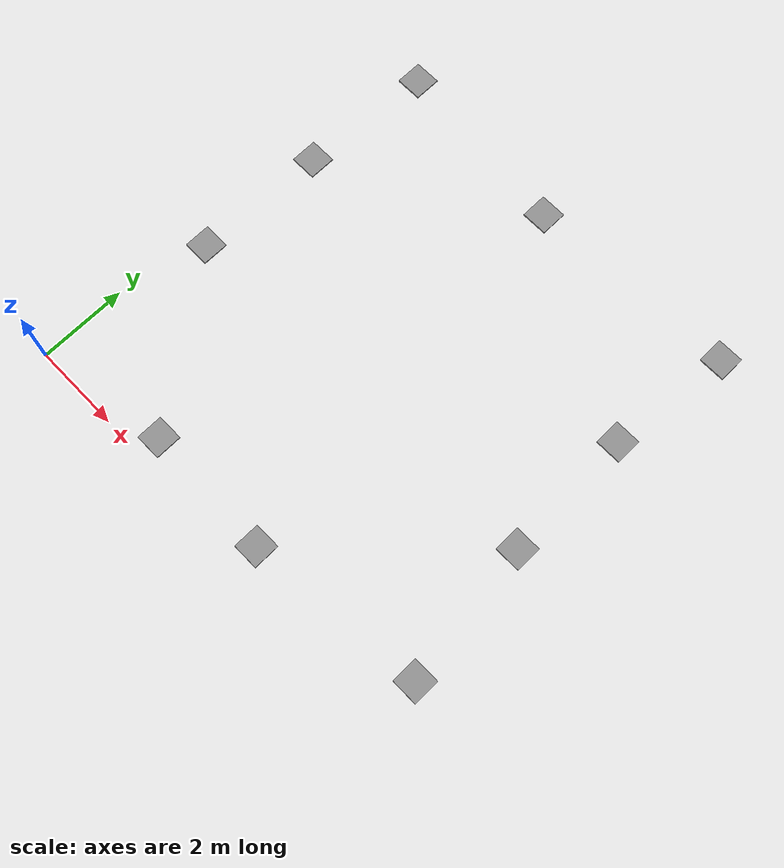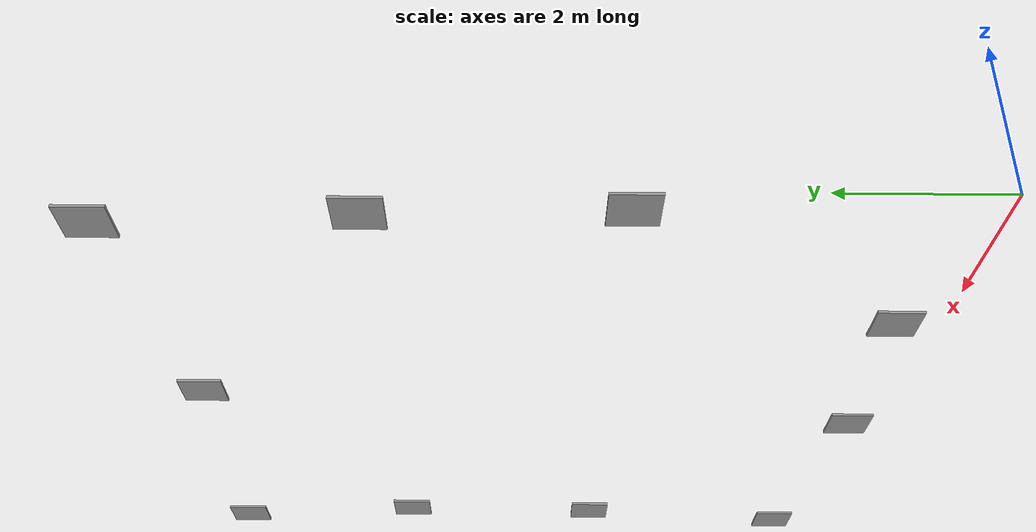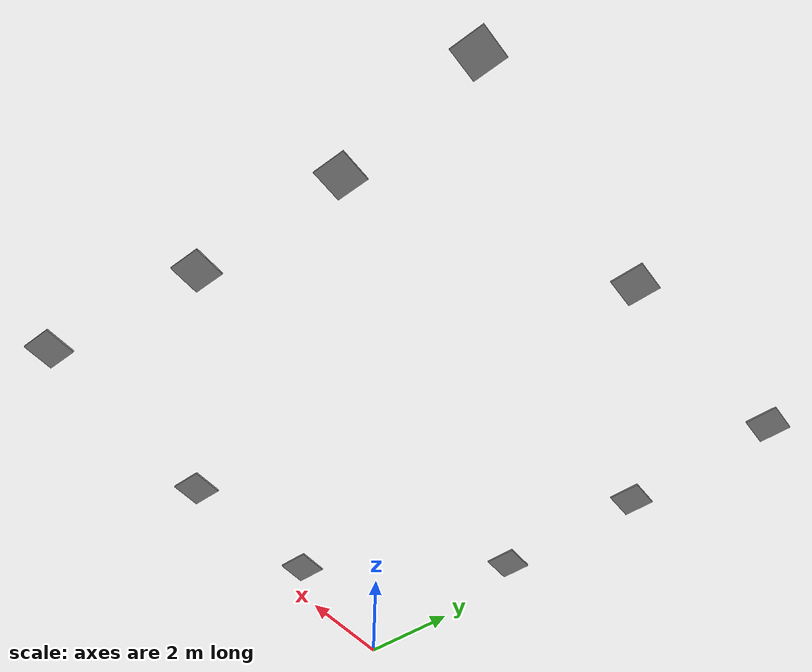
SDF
<?xml version="1.0" ?>
<sdf version="1.5">
  <model name="obstacles">

    <include>
      <name>o1</name>
      <pose>10 0.8 0.12 0 0 0</pose>
      <uri>model://obstacle</uri>
    </include>
    <include>
      <name>o2</name>
      <pose>0.8 10 0.12 0 0 0</pose>
      <uri>model://obstacle</uri>
    </include>
    <include>
      <name>o3</name>
      <pose>9.8 9.8 0.12 0 0 0</pose>
      <uri>model://obstacle</uri>
    </include>
    <include>
      <name>o4</name>
      <pose>6 0.4 0.12 0 0 0</pose>
      <uri>model://obstacle</uri>
    </include>
    <include>
      <name>o5</name>
      <pose>9.6 4 0.12 0 0 0</pose>
      <uri>model://obstacle</uri>
    </include>
    <include>
      <name>o6</name>
      <pose>5 9.6 0.12 0 0 0</pose>
      <uri>model://obstacle</uri>
    </include>
    <include>
      <name>o7</name>
      <pose>0.5 4 0.12 0 0 0</pose>
      <uri>model://obstacle</uri>
    </include>
    <include>
      <name>o8</name>
      <pose>9.5 7 0.12 0 0 0</pose>
      <uri>model://obstacle</uri>
    </include>
    <include>
      <name>o9</name>
      <pose>3 0.5 0.12 0 0 0</pose>
      <uri>model://obstacle</uri>
    </include>
    <include>
      <name>o10</name>
      <pose>0.6 7 0.12 0 0 0</pose>
      <uri>model://obstacle</uri>
    </include>

  </model>
</sdf>

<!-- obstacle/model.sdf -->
<sdf version="1.5">
  <model name="obstacle">
    <static>true</static>
    <link name="link">
      <inertial>
        <mass>1.5</mass>
          <inertia>
            <ixx>0.2</ixx>
            <ixy>0</ixy>
            <ixz>0</ixz>
            <iyy>0.2</iyy>
            <iyz>0</iyz>
            <izz>0.2</izz>
          </inertia>
      </inertial>
      <collision name="c1">
        <geometry>
          <box>
            <size>0.6 0.6 0.035</size>
          </box>
        </geometry>
      </collision>
      <visual name="v1">
        <geometry>
          <box>
            <size>0.6 0.6 0.035</size>
          </box>
        </geometry>
        <material>
          <script>
            <name>Gazebo/Grey</name>
            <uri>file://media/materials/scripts/gazebo.material</uri>
          </script>
        </material>
      </visual>
    </link>
  </model>
</sdf>
